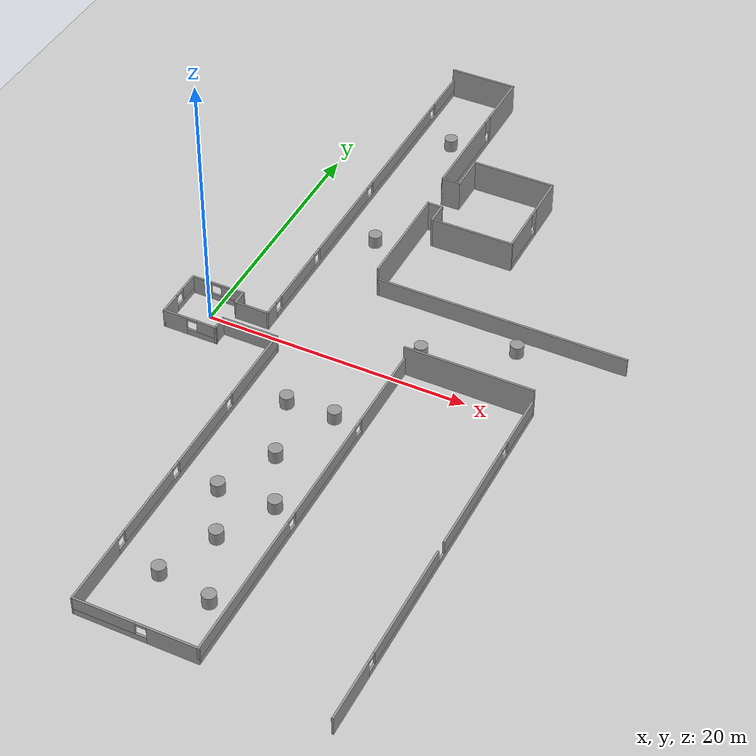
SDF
<sdf version="1.7">
 <world name="default">
  <model name="ground_plane">
   <static>1</static>
   <link name="link">
    <collision name="collision">
     <geometry><plane><normal>0 0 1</normal><size>100 100</size></plane></geometry>
     <surface><friction><ode><mu>100</mu><mu2>50</mu2></ode></friction></surface>
    </collision>
    <visual name="visual">
     <cast_shadows>0</cast_shadows>
     <geometry><plane><normal>0 0 1</normal><size>100 100</size></plane></geometry>
     <material>
      <script><uri>file://media/materials/scripts/gazebo.material</uri><name>Gazebo/Grey</name></script>
     </material>
    </visual>
   </link>
  </model>
  <model name="Hummanoid_Test_world">
   <pose>28.8571 1.76082 0 0 -0 0</pose>
   <link name="Wall_1">
    <pose>-29.1696 -3.935 0 0 -0 0</pose>
    <visual name="Wall_1_Visual_0">
     <pose>-1.19344 0 0.75 0 -0 0</pose>
     <geometry><box><size>1.92395 0.15 1.5</size></box></geometry>
     <material>
      <script><uri>file://media/materials/scripts/gazebo.material</uri><name>Gazebo/Grey</name></script>
      <ambient>1 1 1 1</ambient>
     </material>
     <meta><layer>0</layer></meta>
    </visual>
    <collision name="Wall_1_Collision_0">
     <geometry><box><size>1.92395 0.15 1.5</size></box></geometry>
     <pose>-1.19344 0 0.75 0 -0 0</pose>
    </collision>
    <visual name="Wall_1_Visual_1">
     <pose>0.961976 0 0.25 0 -0 0</pose>
     <geometry><box><size>2.38688 0.15 0.5</size></box></geometry>
     <material>
      <script><uri>file://media/materials/scripts/gazebo.material</uri><name>Gazebo/Grey</name></script>
      <ambient>1 1 1 1</ambient>
     </material>
     <meta><layer>0</layer></meta>
    </visual>
    <collision name="Wall_1_Collision_1">
     <geometry><box><size>2.38688 0.15 0.5</size></box></geometry>
     <pose>0.961976 0 0.25 0 -0 0</pose>
    </collision>
    <visual name="Wall_1_Visual_2">
     <pose>1.36198 0 1 0 -0 0</pose>
     <geometry><box><size>1.58688 0.15 1</size></box></geometry>
     <material>
      <script><uri>file://media/materials/scripts/gazebo.material</uri><name>Gazebo/Grey</name></script>
      <ambient>1 1 1 1</ambient>
     </material>
     <meta><layer>0</layer></meta>
    </visual>
    <collision name="Wall_1_Collision_2">
     <geometry><box><size>1.58688 0.15 1</size></box></geometry>
     <pose>1.36198 0 1 0 -0 0</pose>
    </collision>
    <visual name="Wall_1_Visual_3">
     <pose>0.168535 0 1.4 0 -0 0</pose>
     <geometry><box><size>0.8 0.15 0.2</size></box></geometry>
     <material>
      <script><uri>file://media/materials/scripts/gazebo.material</uri><name>Gazebo/Grey</name></script>
      <ambient>1 1 1 1</ambient>
     </material>
     <meta><layer>0</layer></meta>
    </visual>
    <collision name="Wall_1_Collision_3">
     <geometry><box><size>0.8 0.15 0.2</size></box></geometry>
     <pose>0.168535 0 1.4 0 -0 0</pose>
    </collision>
   </link>
   <link name="Wall_10">
    <collision name="Wall_10_Collision">
     <geometry><box><size>2.75 0.15 1.5</size></box></geometry>
     <pose>0 0 0.75 0 -0 0</pose>
    </collision>
    <visual name="Wall_10_Visual">
     <pose>0 0 0.75 0 -0 0</pose>
     <geometry><box><size>2.75 0.15 1.5</size></box></geometry>
     <material>
      <script><uri>file://media/materials/scripts/gazebo.material</uri><name>Gazebo/Grey</name></script>
      <ambient>1 1 1 1</ambient>
     </material>
     <meta><layer>0</layer></meta>
    </visual>
    <pose>-25.85 -0.935 0 0 -0 0</pose>
   </link>
   <link name="Wall_11">
    <pose>-24.55 14.74 0 0 -0 1.5708</pose>
    <visual name="Wall_11_Visual_0">
     <pose>-15.1239 0 0.75 0 -0 0</pose>
     <geometry><box><size>1.25227 0.15 1.5</size></box></geometry>
     <material>
      <script><uri>file://media/materials/scripts/gazebo.material</uri><name>Gazebo/Grey</name></script>
      <ambient>1 1 1 1</ambient>
     </material>
     <meta><layer>0</layer></meta>
    </visual>
    <collision name="Wall_11_Collision_0">
     <geometry><box><size>1.25227 0.15 1.5</size></box></geometry>
     <pose>-15.1239 0 0.75 0 -0 0</pose>
    </collision>
    <visual name="Wall_11_Visual_1">
     <pose>0.626135 0 0.25 0 -0 0</pose>
     <geometry><box><size>30.2477 0.15 0.5</size></box></geometry>
     <material>
      <script><uri>file://media/materials/scripts/gazebo.material</uri><name>Gazebo/Grey</name></script>
      <ambient>1 1 1 1</ambient>
     </material>
     <meta><layer>0</layer></meta>
    </visual>
    <collision name="Wall_11_Collision_1">
     <geometry><box><size>30.2477 0.15 0.5</size></box></geometry>
     <pose>0.626135 0 0.25 0 -0 0</pose>
    </collision>
    <visual name="Wall_11_Visual_2">
     <pose>-11.1577 0 1 0 -0 0</pose>
     <geometry><box><size>5.08 0.15 1</size></box></geometry>
     <material>
      <script><uri>file://media/materials/scripts/gazebo.material</uri><name>Gazebo/Grey</name></script>
      <ambient>1 1 1 1</ambient>
     </material>
     <meta><layer>0</layer></meta>
    </visual>
    <collision name="Wall_11_Collision_2">
     <geometry><box><size>5.08 0.15 1</size></box></geometry>
     <pose>-11.1577 0 1 0 -0 0</pose>
    </collision>
    <visual name="Wall_11_Visual_3">
     <pose>-3.87047 0 1 0 -0 0</pose>
     <geometry><box><size>7.89451 0.15 1</size></box></geometry>
     <material>
      <script><uri>file://media/materials/scripts/gazebo.material</uri><name>Gazebo/Grey</name></script>
      <ambient>1 1 1 1</ambient>
     </material>
     <meta><layer>0</layer></meta>
    </visual>
    <collision name="Wall_11_Collision_3">
     <geometry><box><size>7.89451 0.15 1</size></box></geometry>
     <pose>-3.87047 0 1 0 -0 0</pose>
    </collision>
    <visual name="Wall_11_Visual_4">
     <pose>6.00999 0 1 0 -0 0</pose>
     <geometry><box><size>10.2664 0.15 1</size></box></geometry>
     <material>
      <script><uri>file://media/materials/scripts/gazebo.material</uri><name>Gazebo/Grey</name></script>
      <ambient>1 1 1 1</ambient>
     </material>
     <meta><layer>0</layer></meta>
    </visual>
    <collision name="Wall_11_Collision_4">
     <geometry><box><size>10.2664 0.15 1</size></box></geometry>
     <pose>6.00999 0 1 0 -0 0</pose>
    </collision>
    <visual name="Wall_11_Visual_5">
     <pose>13.8466 0 1 0 -0 0</pose>
     <geometry><box><size>3.80681 0.15 1</size></box></geometry>
     <material>
      <script><uri>file://media/materials/scripts/gazebo.material</uri><name>Gazebo/Grey</name></script>
      <ambient>1 1 1 1</ambient>
     </material>
     <meta><layer>0</layer></meta>
    </visual>
    <collision name="Wall_11_Collision_5">
     <geometry><box><size>3.80681 0.15 1</size></box></geometry>
     <pose>13.8466 0 1 0 -0 0</pose>
    </collision>
    <visual name="Wall_11_Visual_6">
     <pose>-14.0977 0 1.4 0 -0 0</pose>
     <geometry><box><size>0.8 0.15 0.2</size></box></geometry>
     <material>
      <script><uri>file://media/materials/scripts/gazebo.material</uri><name>Gazebo/Grey</name></script>
      <ambient>1 1 1 1</ambient>
     </material>
     <meta><layer>0</layer></meta>
    </visual>
    <collision name="Wall_11_Collision_6">
     <geometry><box><size>0.8 0.15 0.2</size></box></geometry>
     <pose>-14.0977 0 1.4 0 -0 0</pose>
    </collision>
    <visual name="Wall_11_Visual_7">
     <pose>-8.21773 0 1.4 0 -0 0</pose>
     <geometry><box><size>0.8 0.15 0.2</size></box></geometry>
     <material>
      <script><uri>file://media/materials/scripts/gazebo.material</uri><name>Gazebo/Grey</name></script>
      <ambient>1 1 1 1</ambient>
     </material>
     <meta><layer>0</layer></meta>
    </visual>
    <collision name="Wall_11_Collision_7">
     <geometry><box><size>0.8 0.15 0.2</size></box></geometry>
     <pose>-8.21773 0 1.4 0 -0 0</pose>
    </collision>
    <visual name="Wall_11_Visual_8">
     <pose>0.476782 0 1.4 0 -0 0</pose>
     <geometry><box><size>0.8 0.15 0.2</size></box></geometry>
     <material>
      <script><uri>file://media/materials/scripts/gazebo.material</uri><name>Gazebo/Grey</name></script>
      <ambient>1 1 1 1</ambient>
     </material>
     <meta><layer>0</layer></meta>
    </visual>
    <collision name="Wall_11_Collision_8">
     <geometry><box><size>0.8 0.15 0.2</size></box></geometry>
     <pose>0.476782 0 1.4 0 -0 0</pose>
    </collision>
    <visual name="Wall_11_Visual_9">
     <pose>11.5432 0 1.4 0 -0 0</pose>
     <geometry><box><size>0.8 0.15 0.2</size></box></geometry>
     <material>
      <script><uri>file://media/materials/scripts/gazebo.material</uri><name>Gazebo/Grey</name></script>
      <ambient>1 1 1 1</ambient>
     </material>
     <meta><layer>0</layer></meta>
    </visual>
    <collision name="Wall_11_Collision_9">
     <geometry><box><size>0.8 0.15 0.2</size></box></geometry>
     <pose>11.5432 0 1.4 0 -0 0</pose>
    </collision>
   </link>
   <link name="Wall_12">
    <collision name="Wall_12_Collision">
     <geometry><box><size>5.25 0.15 2.5</size></box></geometry>
     <pose>0 0 1.25 0 -0 0</pose>
    </collision>
    <visual name="Wall_12_Visual">
     <pose>0 0 1.25 0 -0 0</pose>
     <geometry><box><size>5.25 0.15 2.5</size></box></geometry>
     <material>
      <script><uri>file://media/materials/scripts/gazebo.material</uri><name>Gazebo/Grey</name></script>
      <ambient>1 1 1 1</ambient>
     </material>
     <meta><layer>0</layer></meta>
    </visual>
    <pose>-22 30.415 0 0 -0 0</pose>
   </link>
   <link name="Wall_13">
    <pose>-19.45 23.865 0 0 -0 -1.5708</pose>
    <visual name="Wall_13_Visual_0">
     <pose>-4.31474 0 1.25 0 -0 0</pose>
     <geometry><box><size>4.62052 0.15 2.5</size></box></geometry>
     <material>
      <script><uri>file://media/materials/scripts/gazebo.material</uri><name>Gazebo/Grey</name></script>
      <ambient>1 1 1 1</ambient>
     </material>
     <meta><layer>0</layer></meta>
    </visual>
    <collision name="Wall_13_Collision_0">
     <geometry><box><size>4.62052 0.15 2.5</size></box></geometry>
     <pose>-4.31474 0 1.25 0 -0 0</pose>
    </collision>
    <visual name="Wall_13_Visual_1">
     <pose>2.31026 0 0.25 0 -0 0</pose>
     <geometry><box><size>8.62948 0.15 0.5</size></box></geometry>
     <material>
      <script><uri>file://media/materials/scripts/gazebo.material</uri><name>Gazebo/Grey</name></script>
      <ambient>1 1 1 1</ambient>
     </material>
     <meta><layer>0</layer></meta>
    </visual>
    <collision name="Wall_13_Collision_1">
     <geometry><box><size>8.62948 0.15 0.5</size></box></geometry>
     <pose>2.31026 0 0.25 0 -0 0</pose>
    </collision>
    <visual name="Wall_13_Visual_2">
     <pose>2.71026 0 1.5 0 -0 0</pose>
     <geometry><box><size>7.82948 0.15 2</size></box></geometry>
     <material>
      <script><uri>file://media/materials/scripts/gazebo.material</uri><name>Gazebo/Grey</name></script>
      <ambient>1 1 1 1</ambient>
     </material>
     <meta><layer>0</layer></meta>
    </visual>
    <collision name="Wall_13_Collision_2">
     <geometry><box><size>7.82948 0.15 2</size></box></geometry>
     <pose>2.71026 0 1.5 0 -0 0</pose>
    </collision>
    <visual name="Wall_13_Visual_3">
     <pose>-1.60448 0 1.9 0 -0 0</pose>
     <geometry><box><size>0.8 0.15 1.2</size></box></geometry>
     <material>
      <script><uri>file://media/materials/scripts/gazebo.material</uri><name>Gazebo/Grey</name></script>
      <ambient>1 1 1 1</ambient>
     </material>
     <meta><layer>0</layer></meta>
    </visual>
    <collision name="Wall_13_Collision_3">
     <geometry><box><size>0.8 0.15 1.2</size></box></geometry>
     <pose>-1.60448 0 1.9 0 -0 0</pose>
    </collision>
   </link>
   <link name="Wall_17">
    <collision name="Wall_17_Collision">
     <geometry><box><size>1.5 0.15 2.5</size></box></geometry>
     <pose>0 0 1.25 0 -0 0</pose>
    </collision>
    <visual name="Wall_17_Visual">
     <pose>0 0 1.25 0 -0 0</pose>
     <geometry><box><size>1.5 0.15 2.5</size></box></geometry>
     <material>
      <script><uri>file://media/materials/scripts/gazebo.material</uri><name>Gazebo/Grey</name></script>
      <ambient>1 1 1 1</ambient>
     </material>
     <meta><layer>0</layer></meta>
    </visual>
    <pose>-18.775 17.315 0 0 -0 0</pose>
   </link>
   <link name="Wall_18">
    <collision name="Wall_18_Collision">
     <geometry><box><size>3 0.15 2.5</size></box></geometry>
     <pose>0 0 1.25 0 -0 0</pose>
    </collision>
    <visual name="Wall_18_Visual">
     <pose>0 0 1.25 0 -0 0</pose>
     <geometry><box><size>3 0.15 2.5</size></box></geometry>
     <material>
      <script><uri>file://media/materials/scripts/gazebo.material</uri><name>Gazebo/Grey</name></script>
      <ambient>1 1 1 1</ambient>
     </material>
     <meta><layer>0</layer></meta>
    </visual>
    <pose>-18.1 18.74 0 0 -0 1.5708</pose>
   </link>
   <link name="Wall_19">
    <collision name="Wall_19_Collision">
     <geometry><box><size>6.5 0.15 2.5</size></box></geometry>
     <pose>0 0 1.25 0 -0 0</pose>
    </collision>
    <visual name="Wall_19_Visual">
     <pose>0 0 1.25 0 -0 0</pose>
     <geometry><box><size>6.5 0.15 2.5</size></box></geometry>
     <material>
      <script><uri>file://media/materials/scripts/gazebo.material</uri><name>Gazebo/Grey</name></script>
      <ambient>1 1 1 1</ambient>
     </material>
     <meta><layer>0</layer></meta>
    </visual>
    <pose>-14.925 20.165 0 0 -0 0</pose>
   </link>
   <link name="Wall_20">
    <pose>-11.75 16.365 0 0 -0 -1.5708</pose>
    <visual name="Wall_20_Visual_0">
     <pose>-2.24729 0 1.25 0 -0 0</pose>
     <geometry><box><size>3.25542 0.15 2.5</size></box></geometry>
     <material>
      <script><uri>file://media/materials/scripts/gazebo.material</uri><name>Gazebo/Grey</name></script>
      <ambient>1 1 1 1</ambient>
     </material>
     <meta><layer>0</layer></meta>
    </visual>
    <collision name="Wall_20_Collision_0">
     <geometry><box><size>3.25542 0.15 2.5</size></box></geometry>
     <pose>-2.24729 0 1.25 0 -0 0</pose>
    </collision>
    <visual name="Wall_20_Visual_1">
     <pose>1.62771 0 0.25 0 -0 0</pose>
     <geometry><box><size>4.49458 0.15 0.5</size></box></geometry>
     <material>
      <script><uri>file://media/materials/scripts/gazebo.material</uri><name>Gazebo/Grey</name></script>
      <ambient>1 1 1 1</ambient>
     </material>
     <meta><layer>0</layer></meta>
    </visual>
    <collision name="Wall_20_Collision_1">
     <geometry><box><size>4.49458 0.15 0.5</size></box></geometry>
     <pose>1.62771 0 0.25 0 -0 0</pose>
    </collision>
    <visual name="Wall_20_Visual_2">
     <pose>2.02771 0 1.5 0 -0 0</pose>
     <geometry><box><size>3.69458 0.15 2</size></box></geometry>
     <material>
      <script><uri>file://media/materials/scripts/gazebo.material</uri><name>Gazebo/Grey</name></script>
      <ambient>1 1 1 1</ambient>
     </material>
     <meta><layer>0</layer></meta>
    </visual>
    <collision name="Wall_20_Collision_2">
     <geometry><box><size>3.69458 0.15 2</size></box></geometry>
     <pose>2.02771 0 1.5 0 -0 0</pose>
    </collision>
    <visual name="Wall_20_Visual_3">
     <pose>-0.219584 0 1.9 0 -0 0</pose>
     <geometry><box><size>0.8 0.15 1.2</size></box></geometry>
     <material>
      <script><uri>file://media/materials/scripts/gazebo.material</uri><name>Gazebo/Grey</name></script>
      <ambient>1 1 1 1</ambient>
     </material>
     <meta><layer>0</layer></meta>
    </visual>
    <collision name="Wall_20_Collision_3">
     <geometry><box><size>0.8 0.15 1.2</size></box></geometry>
     <pose>-0.219584 0 1.9 0 -0 0</pose>
    </collision>
   </link>
   <link name="Wall_21">
    <collision name="Wall_21_Collision">
     <geometry><box><size>6.5 0.15 2.5</size></box></geometry>
     <pose>0 0 1.25 0 -0 0</pose>
    </collision>
    <visual name="Wall_21_Visual">
     <pose>0 0 1.25 0 -0 0</pose>
     <geometry><box><size>6.5 0.15 2.5</size></box></geometry>
     <material>
      <script><uri>file://media/materials/scripts/gazebo.material</uri><name>Gazebo/Grey</name></script>
      <ambient>1 1 1 1</ambient>
     </material>
     <meta><layer>0</layer></meta>
    </visual>
    <pose>-14.925 12.565 0 0 -0 3.14159</pose>
   </link>
   <link name="Wall_22">
    <collision name="Wall_22_Collision">
     <geometry><box><size>1.75 0.15 2.5</size></box></geometry>
     <pose>0 0 1.25 0 -0 0</pose>
    </collision>
    <visual name="Wall_22_Visual">
     <pose>0 0 1.25 0 -0 0</pose>
     <geometry><box><size>1.75 0.15 2.5</size></box></geometry>
     <material>
      <script><uri>file://media/materials/scripts/gazebo.material</uri><name>Gazebo/Grey</name></script>
      <ambient>1 1 1 1</ambient>
     </material>
     <meta><layer>0</layer></meta>
    </visual>
    <pose>-18.1 13.365 0 0 -0 1.5708</pose>
   </link>
   <link name="Wall_23">
    <collision name="Wall_23_Collision">
     <geometry><box><size>1.25 0.15 2.5</size></box></geometry>
     <pose>0 0 1.25 0 -0 0</pose>
    </collision>
    <visual name="Wall_23_Visual">
     <pose>0 0 1.25 0 -0 0</pose>
     <geometry><box><size>1.25 0.15 2.5</size></box></geometry>
     <material>
      <script><uri>file://media/materials/scripts/gazebo.material</uri><name>Gazebo/Grey</name></script>
      <ambient>1 1 1 1</ambient>
     </material>
     <meta><layer>0</layer></meta>
    </visual>
    <pose>-18.65 14.165 0 0 -0 3.14159</pose>
   </link>
   <link name="Wall_24">
    <collision name="Wall_24_Collision">
     <geometry><box><size>8.5 0.15 2.5</size></box></geometry>
     <pose>0 0 1.25 0 -0 0</pose>
    </collision>
    <visual name="Wall_24_Visual">
     <pose>0 0 1.25 0 -0 0</pose>
     <geometry><box><size>8.5 0.15 2.5</size></box></geometry>
     <material>
      <script><uri>file://media/materials/scripts/gazebo.material</uri><name>Gazebo/Grey</name></script>
      <ambient>1 1 1 1</ambient>
     </material>
     <meta><layer>0</layer></meta>
    </visual>
    <pose>-19.2 9.99 0 0 -0 -1.5708</pose>
   </link>
   <link name="Wall_25">
    <collision name="Wall_25_Collision">
     <geometry><box><size>19.25 0.15 1.5</size></box></geometry>
     <pose>0 0 0.75 0 -0 0</pose>
    </collision>
    <visual name="Wall_25_Visual">
     <pose>0 0 0.75 0 -0 0</pose>
     <geometry><box><size>19.25 0.15 1.5</size></box></geometry>
     <material>
      <script><uri>file://media/materials/scripts/gazebo.material</uri><name>Gazebo/Grey</name></script>
      <ambient>1 1 1 1</ambient>
     </material>
     <meta><layer>0</layer></meta>
    </visual>
    <pose>-9.65 5.815 0 0 -0 0</pose>
   </link>
   <link name="Wall_4">
    <pose>-31.25 -1.885 0 0 -0 1.5708</pose>
    <visual name="Wall_4_Visual_0">
     <pose>-1.21756 0 0.75 0 -0 0</pose>
     <geometry><box><size>1.81488 0.15 1.5</size></box></geometry>
     <material>
      <script><uri>file://media/materials/scripts/gazebo.material</uri><name>Gazebo/Grey</name></script>
      <ambient>1 1 1 1</ambient>
     </material>
     <meta><layer>0</layer></meta>
    </visual>
    <collision name="Wall_4_Collision_0">
     <geometry><box><size>1.81488 0.15 1.5</size></box></geometry>
     <pose>-1.21756 0 0.75 0 -0 0</pose>
    </collision>
    <visual name="Wall_4_Visual_1">
     <pose>0.907438 0 0.25 0 -0 0</pose>
     <geometry><box><size>2.43512 0.15 0.5</size></box></geometry>
     <material>
      <script><uri>file://media/materials/scripts/gazebo.material</uri><name>Gazebo/Grey</name></script>
      <ambient>1 1 1 1</ambient>
     </material>
     <meta><layer>0</layer></meta>
    </visual>
    <collision name="Wall_4_Collision_1">
     <geometry><box><size>2.43512 0.15 0.5</size></box></geometry>
     <pose>0.907438 0 0.25 0 -0 0</pose>
    </collision>
    <visual name="Wall_4_Visual_2">
     <pose>1.30744 0 1 0 -0 0</pose>
     <geometry><box><size>1.63512 0.15 1</size></box></geometry>
     <material>
      <script><uri>file://media/materials/scripts/gazebo.material</uri><name>Gazebo/Grey</name></script>
      <ambient>1 1 1 1</ambient>
     </material>
     <meta><layer>0</layer></meta>
    </visual>
    <collision name="Wall_4_Collision_2">
     <geometry><box><size>1.63512 0.15 1</size></box></geometry>
     <pose>1.30744 0 1 0 -0 0</pose>
    </collision>
    <visual name="Wall_4_Visual_3">
     <pose>0.089877 0 1.4 0 -0 0</pose>
     <geometry><box><size>0.8 0.15 0.2</size></box></geometry>
     <material>
      <script><uri>file://media/materials/scripts/gazebo.material</uri><name>Gazebo/Grey</name></script>
      <ambient>1 1 1 1</ambient>
     </material>
     <meta><layer>0</layer></meta>
    </visual>
    <collision name="Wall_4_Collision_3">
     <geometry><box><size>0.8 0.15 0.2</size></box></geometry>
     <pose>0.089877 0 1.4 0 -0 0</pose>
    </collision>
   </link>
   <link name="Wall_5">
    <pose>-29.2 0.165 0 0 -0 0</pose>
    <visual name="Wall_5_Visual_0">
     <pose>-1.32946 0 0.75 0 -0 0</pose>
     <geometry><box><size>1.59107 0.15 1.5</size></box></geometry>
     <material>
      <script><uri>file://media/materials/scripts/gazebo.material</uri><name>Gazebo/Grey</name></script>
      <ambient>1 1 1 1</ambient>
     </material>
     <meta><layer>0</layer></meta>
    </visual>
    <collision name="Wall_5_Collision_0">
     <geometry><box><size>1.59107 0.15 1.5</size></box></geometry>
     <pose>-1.32946 0 0.75 0 -0 0</pose>
    </collision>
    <visual name="Wall_5_Visual_1">
     <pose>0.795535 0 0.25 0 -0 0</pose>
     <geometry><box><size>2.65893 0.15 0.5</size></box></geometry>
     <material>
      <script><uri>file://media/materials/scripts/gazebo.material</uri><name>Gazebo/Grey</name></script>
      <ambient>1 1 1 1</ambient>
     </material>
     <meta><layer>0</layer></meta>
    </visual>
    <collision name="Wall_5_Collision_1">
     <geometry><box><size>2.65893 0.15 0.5</size></box></geometry>
     <pose>0.795535 0 0.25 0 -0 0</pose>
    </collision>
    <visual name="Wall_5_Visual_2">
     <pose>1.19554 0 1 0 -0 0</pose>
     <geometry><box><size>1.85893 0.15 1</size></box></geometry>
     <material>
      <script><uri>file://media/materials/scripts/gazebo.material</uri><name>Gazebo/Grey</name></script>
      <ambient>1 1 1 1</ambient>
     </material>
     <meta><layer>0</layer></meta>
    </visual>
    <collision name="Wall_5_Collision_2">
     <geometry><box><size>1.85893 0.15 1</size></box></geometry>
     <pose>1.19554 0 1 0 -0 0</pose>
    </collision>
    <visual name="Wall_5_Visual_3">
     <pose>-0.133929 0 1.4 0 -0 0</pose>
     <geometry><box><size>0.8 0.15 0.2</size></box></geometry>
     <material>
      <script><uri>file://media/materials/scripts/gazebo.material</uri><name>Gazebo/Grey</name></script>
      <ambient>1 1 1 1</ambient>
     </material>
     <meta><layer>0</layer></meta>
    </visual>
    <collision name="Wall_5_Collision_3">
     <geometry><box><size>0.8 0.15 0.2</size></box></geometry>
     <pose>-0.133929 0 1.4 0 -0 0</pose>
    </collision>
   </link>
   <link name="Wall_58">
    <pose>-4.271 -15.615 0 0 -0 1.5708</pose>
    <visual name="Wall_58_Visual_0">
     <pose>-12.5404 0 0.75 0 -0 0</pose>
     <geometry><box><size>4.66917 0.15 1.5</size></box></geometry>
     <material>
      <script><uri>file://media/materials/scripts/gazebo.material</uri><name>Gazebo/Grey</name></script>
      <ambient>1 1 1 1</ambient>
     </material>
     <meta><layer>0</layer></meta>
    </visual>
    <collision name="Wall_58_Collision_0">
     <geometry><box><size>4.66917 0.15 1.5</size></box></geometry>
     <pose>-12.5404 0 0.75 0 -0 0</pose>
    </collision>
    <visual name="Wall_58_Visual_1">
     <pose>2.33459 0 0.25 0 -0 0</pose>
     <geometry><box><size>25.0808 0.15 0.5</size></box></geometry>
     <material>
      <script><uri>file://media/materials/scripts/gazebo.material</uri><name>Gazebo/Grey</name></script>
      <ambient>1 1 1 1</ambient>
     </material>
     <meta><layer>0</layer></meta>
    </visual>
    <collision name="Wall_58_Collision_1">
     <geometry><box><size>25.0808 0.15 0.5</size></box></geometry>
     <pose>2.33459 0 0.25 0 -0 0</pose>
    </collision>
    <visual name="Wall_58_Visual_2">
     <pose>-4.85284 0 1 0 -0 0</pose>
     <geometry><box><size>9.10599 0.15 1</size></box></geometry>
     <material>
      <script><uri>file://media/materials/scripts/gazebo.material</uri><name>Gazebo/Grey</name></script>
      <ambient>1 1 1 1</ambient>
     </material>
     <meta><layer>0</layer></meta>
    </visual>
    <collision name="Wall_58_Collision_2">
     <geometry><box><size>9.10599 0.15 1</size></box></geometry>
     <pose>-4.85284 0 1 0 -0 0</pose>
    </collision>
    <visual name="Wall_58_Visual_3">
     <pose>5.05315 0 1 0 -0 0</pose>
     <geometry><box><size>9.10599 0.15 1</size></box></geometry>
     <material>
      <script><uri>file://media/materials/scripts/gazebo.material</uri><name>Gazebo/Grey</name></script>
      <ambient>1 1 1 1</ambient>
     </material>
     <meta><layer>0</layer></meta>
    </visual>
    <collision name="Wall_58_Collision_3">
     <geometry><box><size>9.10599 0.15 1</size></box></geometry>
     <pose>5.05315 0 1 0 -0 0</pose>
    </collision>
    <visual name="Wall_58_Visual_4">
     <pose>12.6406 0 1 0 -0 0</pose>
     <geometry><box><size>4.46885 0.15 1</size></box></geometry>
     <material>
      <script><uri>file://media/materials/scripts/gazebo.material</uri><name>Gazebo/Grey</name></script>
      <ambient>1 1 1 1</ambient>
     </material>
     <meta><layer>0</layer></meta>
    </visual>
    <collision name="Wall_58_Collision_4">
     <geometry><box><size>4.46885 0.15 1</size></box></geometry>
     <pose>12.6406 0 1 0 -0 0</pose>
    </collision>
    <visual name="Wall_58_Visual_5">
     <pose>-9.80583 0 1.4 0 -0 0</pose>
     <geometry><box><size>0.8 0.15 0.2</size></box></geometry>
     <material>
      <script><uri>file://media/materials/scripts/gazebo.material</uri><name>Gazebo/Grey</name></script>
      <ambient>1 1 1 1</ambient>
     </material>
     <meta><layer>0</layer></meta>
    </visual>
    <collision name="Wall_58_Collision_5">
     <geometry><box><size>0.8 0.15 0.2</size></box></geometry>
     <pose>-9.80583 0 1.4 0 -0 0</pose>
    </collision>
    <visual name="Wall_58_Visual_6">
     <pose>-0.299842 0 1.4 0 -0 0</pose>
     <geometry><box><size>0 0.15 0.2</size></box></geometry>
     <material>
      <script><uri>file://media/materials/scripts/gazebo.material</uri><name>Gazebo/Grey</name></script>
      <ambient>1 1 1 1</ambient>
     </material>
     <meta><layer>0</layer></meta>
    </visual>
    <collision name="Wall_58_Collision_6">
     <geometry><box><size>0 0.15 0.2</size></box></geometry>
     <pose>-0.299842 0 1.4 0 -0 0</pose>
    </collision>
    <visual name="Wall_58_Visual_7">
     <pose>10.0061 0 1.4 0 -0 0</pose>
     <geometry><box><size>0.8 0.15 0.2</size></box></geometry>
     <material>
      <script><uri>file://media/materials/scripts/gazebo.material</uri><name>Gazebo/Grey</name></script>
      <ambient>1 1 1 1</ambient>
     </material>
     <meta><layer>0</layer></meta>
    </visual>
    <collision name="Wall_58_Collision_7">
     <geometry><box><size>0.8 0.15 0.2</size></box></geometry>
     <pose>10.0061 0 1.4 0 -0 0</pose>
    </collision>
   </link>
   <link name="Wall_59">
    <collision name="Wall_59_Collision">
     <geometry><box><size>9.75 0.15 2.5</size></box></geometry>
     <pose>0 0 1.25 0 -0 0</pose>
    </collision>
    <visual name="Wall_59_Visual">
     <pose>0 0 1.25 0 -0 0</pose>
     <geometry><box><size>9.75 0.15 2.5</size></box></geometry>
     <material>
      <script><uri>file://media/materials/scripts/gazebo.material</uri><name>Gazebo/Grey</name></script>
      <ambient>1 1 1 1</ambient>
     </material>
     <meta><layer>0</layer></meta>
    </visual>
    <pose>-9.071 -0.815 0 0 -0 3.14159</pose>
   </link>
   <link name="Wall_6">
    <collision name="Wall_6_Collision">
     <geometry><box><size>1.25 0.15 1.5</size></box></geometry>
     <pose>0 0 0.75 0 -0 0</pose>
    </collision>
    <visual name="Wall_6_Visual">
     <pose>0 0 0.75 0 -0 0</pose>
     <geometry><box><size>1.25 0.15 1.5</size></box></geometry>
     <material>
      <script><uri>file://media/materials/scripts/gazebo.material</uri><name>Gazebo/Grey</name></script>
      <ambient>1 1 1 1</ambient>
     </material>
     <meta><layer>0</layer></meta>
    </visual>
    <pose>-27.15 -0.385 0 0 -0 -1.5708</pose>
   </link>
   <link name="Wall_60">
    <pose>-13.871 -15.115 0 0 -0 -1.5708</pose>
    <visual name="Wall_60_Visual_0">
     <pose>-10.9377 0 0.75 0 -0 0</pose>
     <geometry><box><size>6.87459 0.15 1.5</size></box></geometry>
     <material>
      <script><uri>file://media/materials/scripts/gazebo.material</uri><name>Gazebo/Grey</name></script>
      <ambient>1 1 1 1</ambient>
     </material>
     <meta><layer>0</layer></meta>
    </visual>
    <collision name="Wall_60_Collision_0">
     <geometry><box><size>6.87459 0.15 1.5</size></box></geometry>
     <pose>-10.9377 0 0.75 0 -0 0</pose>
    </collision>
    <visual name="Wall_60_Visual_1">
     <pose>3.4373 0 0.25 0 -0 0</pose>
     <geometry><box><size>21.8754 0.15 0.5</size></box></geometry>
     <material>
      <script><uri>file://media/materials/scripts/gazebo.material</uri><name>Gazebo/Grey</name></script>
      <ambient>1 1 1 1</ambient>
     </material>
     <meta><layer>0</layer></meta>
    </visual>
    <collision name="Wall_60_Collision_1">
     <geometry><box><size>21.8754 0.15 0.5</size></box></geometry>
     <pose>3.4373 0 0.25 0 -0 0</pose>
    </collision>
    <visual name="Wall_60_Visual_2">
     <pose>-2.35968 0 1 0 -0 0</pose>
     <geometry><box><size>8.68145 0.15 1</size></box></geometry>
     <material>
      <script><uri>file://media/materials/scripts/gazebo.material</uri><name>Gazebo/Grey</name></script>
      <ambient>1 1 1 1</ambient>
     </material>
     <meta><layer>0</layer></meta>
    </visual>
    <collision name="Wall_60_Collision_2">
     <geometry><box><size>8.68145 0.15 1</size></box></geometry>
     <pose>-2.35968 0 1 0 -0 0</pose>
    </collision>
    <visual name="Wall_60_Visual_3">
     <pose>8.57802 0 1 0 -0 0</pose>
     <geometry><box><size>11.594 0.15 1</size></box></geometry>
     <material>
      <script><uri>file://media/materials/scripts/gazebo.material</uri><name>Gazebo/Grey</name></script>
      <ambient>1 1 1 1</ambient>
     </material>
     <meta><layer>0</layer></meta>
    </visual>
    <collision name="Wall_60_Collision_3">
     <geometry><box><size>11.594 0.15 1</size></box></geometry>
     <pose>8.57802 0 1 0 -0 0</pose>
    </collision>
    <visual name="Wall_60_Visual_4">
     <pose>-7.10041 0 1.4 0 -0 0</pose>
     <geometry><box><size>0.8 0.15 0.2</size></box></geometry>
     <material>
      <script><uri>file://media/materials/scripts/gazebo.material</uri><name>Gazebo/Grey</name></script>
      <ambient>1 1 1 1</ambient>
     </material>
     <meta><layer>0</layer></meta>
    </visual>
    <collision name="Wall_60_Collision_4">
     <geometry><box><size>0.8 0.15 0.2</size></box></geometry>
     <pose>-7.10041 0 1.4 0 -0 0</pose>
    </collision>
    <visual name="Wall_60_Visual_5">
     <pose>2.38104 0 1.4 0 -0 0</pose>
     <geometry><box><size>0.8 0.15 0.2</size></box></geometry>
     <material>
      <script><uri>file://media/materials/scripts/gazebo.material</uri><name>Gazebo/Grey</name></script>
      <ambient>1 1 1 1</ambient>
     </material>
     <meta><layer>0</layer></meta>
    </visual>
    <collision name="Wall_60_Collision_5">
     <geometry><box><size>0.8 0.15 0.2</size></box></geometry>
     <pose>2.38104 0 1.4 0 -0 0</pose>
    </collision>
   </link>
   <link name="Wall_61">
    <pose>-18.3415 -29.415 0 0 -0 3.14159</pose>
    <visual name="Wall_61_Visual_0">
     <pose>-2.68795 0 0.75 0 -0 0</pose>
     <geometry><box><size>3.71541 0.15 1.5</size></box></geometry>
     <material>
      <script><uri>file://media/materials/scripts/gazebo.material</uri><name>Gazebo/Grey</name></script>
      <ambient>1 1 1 1</ambient>
     </material>
     <meta><layer>0</layer></meta>
    </visual>
    <collision name="Wall_61_Collision_0">
     <geometry><box><size>3.71541 0.15 1.5</size></box></geometry>
     <pose>-2.68795 0 0.75 0 -0 0</pose>
    </collision>
    <visual name="Wall_61_Visual_1">
     <pose>1.8577 0 0.25 0 -0 0</pose>
     <geometry><box><size>5.37589 0.15 0.5</size></box></geometry>
     <material>
      <script><uri>file://media/materials/scripts/gazebo.material</uri><name>Gazebo/Grey</name></script>
      <ambient>1 1 1 1</ambient>
     </material>
     <meta><layer>0</layer></meta>
    </visual>
    <collision name="Wall_61_Collision_1">
     <geometry><box><size>5.37589 0.15 0.5</size></box></geometry>
     <pose>1.8577 0 0.25 0 -0 0</pose>
    </collision>
    <visual name="Wall_61_Visual_2">
     <pose>2.25771 0 1 0 -0 0</pose>
     <geometry><box><size>4.5759 0.15 1</size></box></geometry>
     <material>
      <script><uri>file://media/materials/scripts/gazebo.material</uri><name>Gazebo/Grey</name></script>
      <ambient>1 1 1 1</ambient>
     </material>
     <meta><layer>0</layer></meta>
    </visual>
    <collision name="Wall_61_Collision_2">
     <geometry><box><size>4.5759 0.15 1</size></box></geometry>
     <pose>2.25771 0 1 0 -0 0</pose>
    </collision>
    <visual name="Wall_61_Visual_3">
     <pose>-0.430243 0 1.4 0 -0 0</pose>
     <geometry><box><size>0.8 0.15 0.2</size></box></geometry>
     <material>
      <script><uri>file://media/materials/scripts/gazebo.material</uri><name>Gazebo/Grey</name></script>
      <ambient>1 1 1 1</ambient>
     </material>
     <meta><layer>0</layer></meta>
    </visual>
    <collision name="Wall_61_Collision_3">
     <geometry><box><size>0.8 0.15 0.2</size></box></geometry>
     <pose>-0.430243 0 1.4 0 -0 0</pose>
    </collision>
   </link>
   <link name="Wall_62">
    <pose>-22.8275 -16.1185 0 0 -0 1.57196</pose>
    <visual name="Wall_62_Visual_0">
     <pose>-10.6616 0 0.75 0 -0 0</pose>
     <geometry><box><size>5.41984 0.15 1.5</size></box></geometry>
     <material>
      <script><uri>file://media/materials/scripts/gazebo.material</uri><name>Gazebo/Grey</name></script>
      <ambient>1 1 1 1</ambient>
     </material>
     <meta><layer>0</layer></meta>
    </visual>
    <collision name="Wall_62_Collision_0">
     <geometry><box><size>5.41984 0.15 1.5</size></box></geometry>
     <pose>-10.6616 0 0.75 0 -0 0</pose>
    </collision>
    <visual name="Wall_62_Visual_1">
     <pose>2.70992 0 0.25 0 -0 0</pose>
     <geometry><box><size>21.3232 0.15 0.5</size></box></geometry>
     <material>
      <script><uri>file://media/materials/scripts/gazebo.material</uri><name>Gazebo/Grey</name></script>
      <ambient>1 1 1 1</ambient>
     </material>
     <meta><layer>0</layer></meta>
    </visual>
    <collision name="Wall_62_Collision_1">
     <geometry><box><size>21.3232 0.15 0.5</size></box></geometry>
     <pose>2.70992 0 0.25 0 -0 0</pose>
    </collision>
    <visual name="Wall_62_Visual_2">
     <pose>-4.12401 0 1 0 -0 0</pose>
     <geometry><box><size>6.05532 0.15 1</size></box></geometry>
     <material>
      <script><uri>file://media/materials/scripts/gazebo.material</uri><name>Gazebo/Grey</name></script>
      <ambient>1 1 1 1</ambient>
     </material>
     <meta><layer>0</layer></meta>
    </visual>
    <collision name="Wall_62_Collision_2">
     <geometry><box><size>6.05532 0.15 1</size></box></geometry>
     <pose>-4.12401 0 1 0 -0 0</pose>
    </collision>
    <visual name="Wall_62_Visual_3">
     <pose>2.87413 0 1 0 -0 0</pose>
     <geometry><box><size>6.34096 0.15 1</size></box></geometry>
     <material>
      <script><uri>file://media/materials/scripts/gazebo.material</uri><name>Gazebo/Grey</name></script>
      <ambient>1 1 1 1</ambient>
     </material>
     <meta><layer>0</layer></meta>
    </visual>
    <collision name="Wall_62_Collision_3">
     <geometry><box><size>6.34096 0.15 1</size></box></geometry>
     <pose>2.87413 0 1 0 -0 0</pose>
    </collision>
    <visual name="Wall_62_Visual_4">
     <pose>10.1081 0 1 0 -0 0</pose>
     <geometry><box><size>6.52689 0.15 1</size></box></geometry>
     <material>
      <script><uri>file://media/materials/scripts/gazebo.material</uri><name>Gazebo/Grey</name></script>
      <ambient>1 1 1 1</ambient>
     </material>
     <meta><layer>0</layer></meta>
    </visual>
    <collision name="Wall_62_Collision_4">
     <geometry><box><size>6.52689 0.15 1</size></box></geometry>
     <pose>10.1081 0 1 0 -0 0</pose>
    </collision>
    <visual name="Wall_62_Visual_5">
     <pose>-7.55167 0 1.4 0 -0 0</pose>
     <geometry><box><size>0.8 0.15 0.2</size></box></geometry>
     <material>
      <script><uri>file://media/materials/scripts/gazebo.material</uri><name>Gazebo/Grey</name></script>
      <ambient>1 1 1 1</ambient>
     </material>
     <meta><layer>0</layer></meta>
    </visual>
    <collision name="Wall_62_Collision_5">
     <geometry><box><size>0.8 0.15 0.2</size></box></geometry>
     <pose>-7.55167 0 1.4 0 -0 0</pose>
    </collision>
    <visual name="Wall_62_Visual_6">
     <pose>-0.696347 0 1.4 0 -0 0</pose>
     <geometry><box><size>0.8 0.15 0.2</size></box></geometry>
     <material>
      <script><uri>file://media/materials/scripts/gazebo.material</uri><name>Gazebo/Grey</name></script>
      <ambient>1 1 1 1</ambient>
     </material>
     <meta><layer>0</layer></meta>
    </visual>
    <collision name="Wall_62_Collision_6">
     <geometry><box><size>0.8 0.15 0.2</size></box></geometry>
     <pose>-0.696347 0 1.4 0 -0 0</pose>
    </collision>
    <visual name="Wall_62_Visual_7">
     <pose>6.44462 0 1.4 0 -0 0</pose>
     <geometry><box><size>0.8 0.15 0.2</size></box></geometry>
     <material>
      <script><uri>file://media/materials/scripts/gazebo.material</uri><name>Gazebo/Grey</name></script>
      <ambient>1 1 1 1</ambient>
     </material>
     <meta><layer>0</layer></meta>
    </visual>
    <collision name="Wall_62_Collision_7">
     <geometry><box><size>0.8 0.15 0.2</size></box></geometry>
     <pose>6.44462 0 1.4 0 -0 0</pose>
    </collision>
   </link>
   <link name="Wall_63">
    <collision name="Wall_63_Collision">
     <geometry><box><size>4.40875 0.15 1.5</size></box></geometry>
     <pose>0 0 0.75 0 -0 0</pose>
    </collision>
    <visual name="Wall_63_Visual">
     <pose>0 0 0.75 0 -0 0</pose>
     <geometry><box><size>4.40875 0.15 1.5</size></box></geometry>
     <material>
      <script><uri>file://media/materials/scripts/gazebo.material</uri><name>Gazebo/Grey</name></script>
      <ambient>1 1 1 1</ambient>
     </material>
     <meta><layer>0</layer></meta>
    </visual>
    <pose>-24.972 -2.822 0 0 -0 3.14159</pose>
   </link>
   <link name="Wall_8">
    <collision name="Wall_8_Collision">
     <geometry><box><size>1.25 0.15 1.5</size></box></geometry>
     <pose>0 0 0.75 0 -0 0</pose>
    </collision>
    <visual name="Wall_8_Visual">
     <pose>0 0 0.75 0 -0 0</pose>
     <geometry><box><size>1.25 0.15 1.5</size></box></geometry>
     <material>
      <script><uri>file://media/materials/scripts/gazebo.material</uri><name>Gazebo/Grey</name></script>
      <ambient>1 1 1 1</ambient>
     </material>
     <meta><layer>0</layer></meta>
    </visual>
    <pose>-27.1196 -3.385 0 0 -0 1.5708</pose>
   </link>
   <static>1</static>
  </model>
  <model name="unit_cylinder">
   <pose>12.7198 -5.32074 0.499998 3e-06 -2e-06 0</pose>
   <link name="link">
    <inertial>
     <mass>1</mass>
     <inertia><ixx>0.145833</ixx><ixy>0</ixy><ixz>0</ixz><iyy>0.145833</iyy><iyz>0</iyz><izz>0.125</izz></inertia>
    </inertial>
    <collision name="collision">
     <geometry><cylinder><radius>0.5</radius><length>1</length></cylinder></geometry>
    </collision>
    <visual name="visual">
     <geometry><cylinder><radius>0.5</radius><length>1</length></cylinder></geometry>
     <material>
      <script><name>Gazebo/Grey</name><uri>file://media/materials/scripts/gazebo.material</uri></script>
     </material>
    </visual>
   </link>
  </model>
  <model name="unit_cylinder_0">
   <pose>9.14658 -5.46519 0.499998 3e-06 -3e-06 0</pose>
   <link name="link">
    <inertial>
     <mass>1</mass>
     <inertia><ixx>0.145833</ixx><ixy>0</ixy><ixz>0</ixz><iyy>0.145833</iyy><iyz>0</iyz><izz>0.125</izz></inertia>
    </inertial>
    <collision name="collision">
     <geometry><cylinder><radius>0.5</radius><length>1</length></cylinder></geometry>
    </collision>
    <visual name="visual">
     <geometry><cylinder><radius>0.5</radius><length>1</length></cylinder></geometry>
     <material>
      <script><name>Gazebo/Grey</name><uri>file://media/materials/scripts/gazebo.material</uri></script>
     </material>
    </visual>
   </link>
  </model>
  <model name="unit_cylinder_1">
   <pose>10.8871 -10.3053 0.499998 3e-06 -3e-06 0</pose>
   <link name="link">
    <inertial>
     <mass>1</mass>
     <inertia><ixx>0.145833</ixx><ixy>0</ixy><ixz>0</ixz><iyy>0.145833</iyy><iyz>0</iyz><izz>0.125</izz></inertia>
    </inertial>
    <collision name="collision">
     <geometry><cylinder><radius>0.5</radius><length>1</length></cylinder></geometry>
    </collision>
    <visual name="visual">
     <geometry><cylinder><radius>0.5</radius><length>1</length></cylinder></geometry>
     <material>
      <script><name>Gazebo/Grey</name><uri>file://media/materials/scripts/gazebo.material</uri></script>
     </material>
    </visual>
   </link>
  </model>
  <model name="unit_cylinder_2">
   <pose>13.0454 -14.3929 0.499998 3e-06 -3e-06 0</pose>
   <link name="link">
    <inertial>
     <mass>1</mass>
     <inertia><ixx>0.145833</ixx><ixy>0</ixy><ixz>0</ixz><iyy>0.145833</iyy><iyz>0</iyz><izz>0.125</izz></inertia>
    </inertial>
    <collision name="collision">
     <geometry><cylinder><radius>0.5</radius><length>1</length></cylinder></geometry>
    </collision>
    <visual name="visual">
     <geometry><cylinder><radius>0.5</radius><length>1</length></cylinder></geometry>
     <material>
      <script><name>Gazebo/Grey</name><uri>file://media/materials/scripts/gazebo.material</uri></script>
     </material>
    </visual>
   </link>
  </model>
  <model name="unit_cylinder_3">
   <pose>8.94486 -14.642 0.499992 -3e-06 3e-06 0</pose>
   <link name="link">
    <inertial>
     <mass>1</mass>
     <inertia><ixx>0.145833</ixx><ixy>0</ixy><ixz>0</ixz><iyy>0.145833</iyy><iyz>0</iyz><izz>0.125</izz></inertia>
    </inertial>
    <collision name="collision">
     <geometry><cylinder><radius>0.5</radius><length>1</length></cylinder></geometry>
    </collision>
    <visual name="visual">
     <geometry><cylinder><radius>0.5</radius><length>1</length></cylinder></geometry>
     <material>
      <script><name>Gazebo/Grey</name><uri>file://media/materials/scripts/gazebo.material</uri></script>
     </material>
    </visual>
   </link>
  </model>
  <model name="unit_cylinder_4">
   <pose>10.9483 -18.3849 0.499998 3e-06 -3e-06 0</pose>
   <link name="link">
    <inertial>
     <mass>1</mass>
     <inertia><ixx>0.145833</ixx><ixy>0</ixy><ixz>0</ixz><iyy>0.145833</iyy><iyz>0</iyz><izz>0.125</izz></inertia>
    </inertial>
    <collision name="collision">
     <geometry><cylinder><radius>0.5</radius><length>1</length></cylinder></geometry>
    </collision>
    <visual name="visual">
     <geometry><cylinder><radius>0.5</radius><length>1</length></cylinder></geometry>
     <material>
      <script><name>Gazebo/Grey</name><uri>file://media/materials/scripts/gazebo.material</uri></script>
     </material>
    </visual>
   </link>
  </model>
  <model name="unit_cylinder_5">
   <pose>13.1881 -23.267 0.499998 3e-06 -3e-06 0</pose>
   <link name="link">
    <inertial>
     <mass>1</mass>
     <inertia><ixx>0.145833</ixx><ixy>0</ixy><ixz>0</ixz><iyy>0.145833</iyy><iyz>0</iyz><izz>0.125</izz></inertia>
    </inertial>
    <collision name="collision">
     <geometry><cylinder><radius>0.5</radius><length>1</length></cylinder></geometry>
    </collision>
    <visual name="visual">
     <geometry><cylinder><radius>0.5</radius><length>1</length></cylinder></geometry>
     <material>
      <script><name>Gazebo/Grey</name><uri>file://media/materials/scripts/gazebo.material</uri></script>
     </material>
    </visual>
   </link>
  </model>
  <model name="unit_cylinder_6">
   <pose>9.21401 -22.6445 0.499992 -3e-06 3e-06 0</pose>
   <link name="link">
    <inertial>
     <mass>1</mass>
     <inertia><ixx>0.145833</ixx><ixy>0</ixy><ixz>0</ixz><iyy>0.145833</iyy><iyz>0</iyz><izz>0.125</izz></inertia>
    </inertial>
    <collision name="collision">
     <geometry><cylinder><radius>0.5</radius><length>1</length></cylinder></geometry>
    </collision>
    <visual name="visual">
     <geometry><cylinder><radius>0.5</radius><length>1</length></cylinder></geometry>
     <material>
      <script><name>Gazebo/Grey</name><uri>file://media/materials/scripts/gazebo.material</uri></script>
     </material>
    </visual>
   </link>
  </model>
  <model name="unit_cylinder_7">
   <pose>15.2 3.09153 0.499998 3e-06 -4e-06 0</pose>
   <link name="link">
    <inertial>
     <mass>1</mass>
     <inertia><ixx>0.145833</ixx><ixy>0</ixy><ixz>0</ixz><iyy>0.145833</iyy><iyz>0</iyz><izz>0.125</izz></inertia>
    </inertial>
    <collision name="collision">
     <geometry><cylinder><radius>0.5</radius><length>1</length></cylinder></geometry>
    </collision>
    <visual name="visual">
     <geometry><cylinder><radius>0.5</radius><length>1</length></cylinder></geometry>
     <material>
      <script><name>Gazebo/Grey</name><uri>file://media/materials/scripts/gazebo.material</uri></script>
     </material>
    </visual>
   </link>
  </model>
  <model name="unit_cylinder_8">
   <pose>21.1667 6.17034 0.499992 -3e-06 4e-06 0</pose>
   <link name="link">
    <inertial>
     <mass>1</mass>
     <inertia><ixx>0.145833</ixx><ixy>0</ixy><ixz>0</ixz><iyy>0.145833</iyy><iyz>0</iyz><izz>0.125</izz></inertia>
    </inertial>
    <collision name="collision">
     <geometry><cylinder><radius>0.5</radius><length>1</length></cylinder></geometry>
    </collision>
    <visual name="visual">
     <geometry><cylinder><radius>0.5</radius><length>1</length></cylinder></geometry>
     <material>
      <script><name>Gazebo/Grey</name><uri>file://media/materials/scripts/gazebo.material</uri></script>
     </material>
    </visual>
   </link>
  </model>
  <model name="unit_cylinder_14">
   <pose>6.96458 12.555 0.499997 3e-06 4e-06 -0</pose>
   <link name="link">
    <inertial>
     <mass>1</mass>
     <inertia><ixx>0.145833</ixx><ixy>0</ixy><ixz>0</ixz><iyy>0.145833</iyy><iyz>0</iyz><izz>0.125</izz></inertia>
    </inertial>
    <collision name="collision">
     <geometry><cylinder><radius>0.5</radius><length>1</length></cylinder></geometry>
    </collision>
    <visual name="visual">
     <geometry><cylinder><radius>0.5</radius><length>1</length></cylinder></geometry>
     <material>
      <script><name>Gazebo/Grey</name><uri>file://media/materials/scripts/gazebo.material</uri></script>
     </material>
    </visual>
   </link>
  </model>
  <model name="unit_cylinder_15">
   <pose>7.07378 25.6962 0.499997 3e-06 4e-06 -0</pose>
   <link name="link">
    <inertial>
     <mass>1</mass>
     <inertia><ixx>0.145833</ixx><ixy>0</ixy><ixz>0</ixz><iyy>0.145833</iyy><iyz>0</iyz><izz>0.125</izz></inertia>
    </inertial>
    <collision name="collision">
     <geometry><cylinder><radius>0.5</radius><length>1</length></cylinder></geometry>
    </collision>
    <visual name="visual">
     <geometry><cylinder><radius>0.5</radius><length>1</length></cylinder></geometry>
     <material>
      <script><name>Gazebo/Grey</name><uri>file://media/materials/scripts/gazebo.material</uri></script>
     </material>
    </visual>
   </link>
  </model>
 </world>
</sdf>
